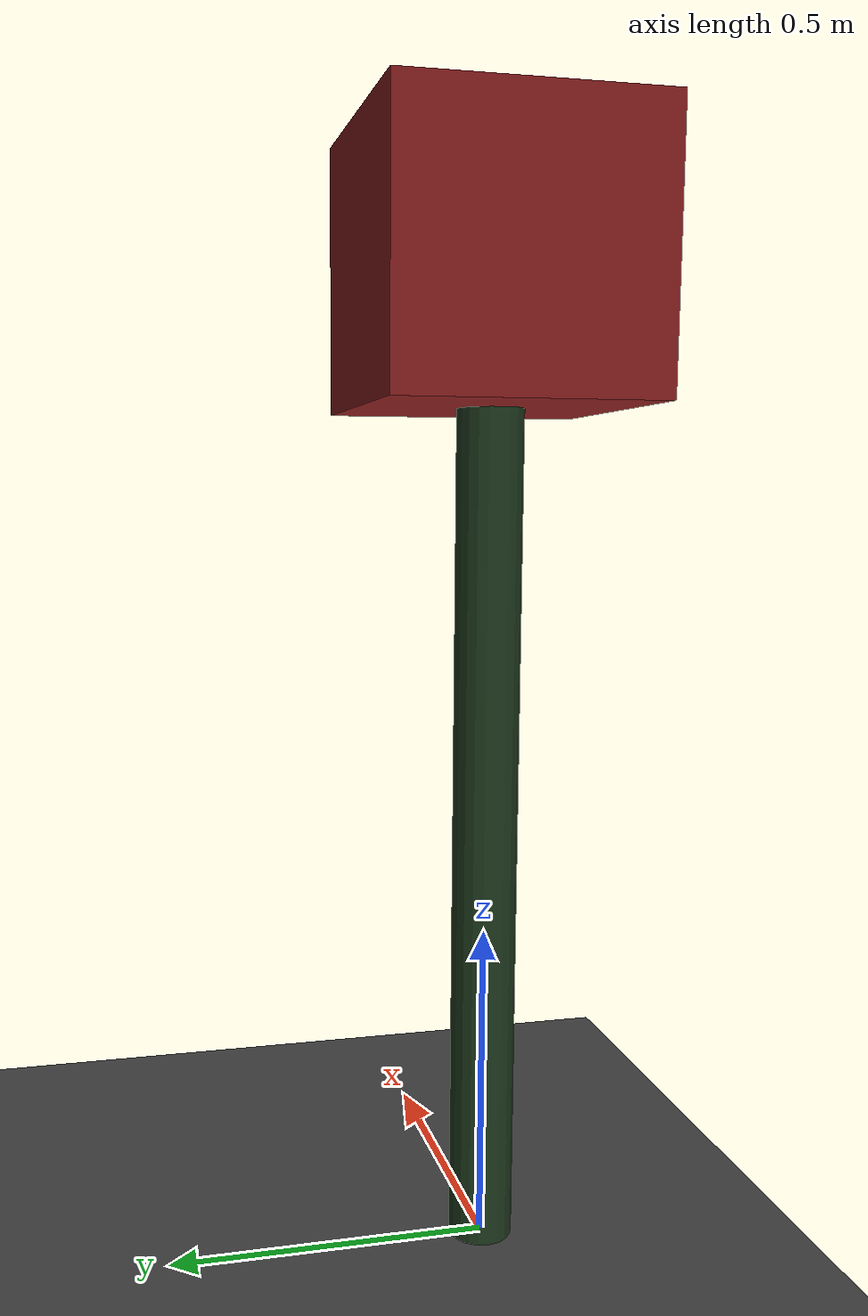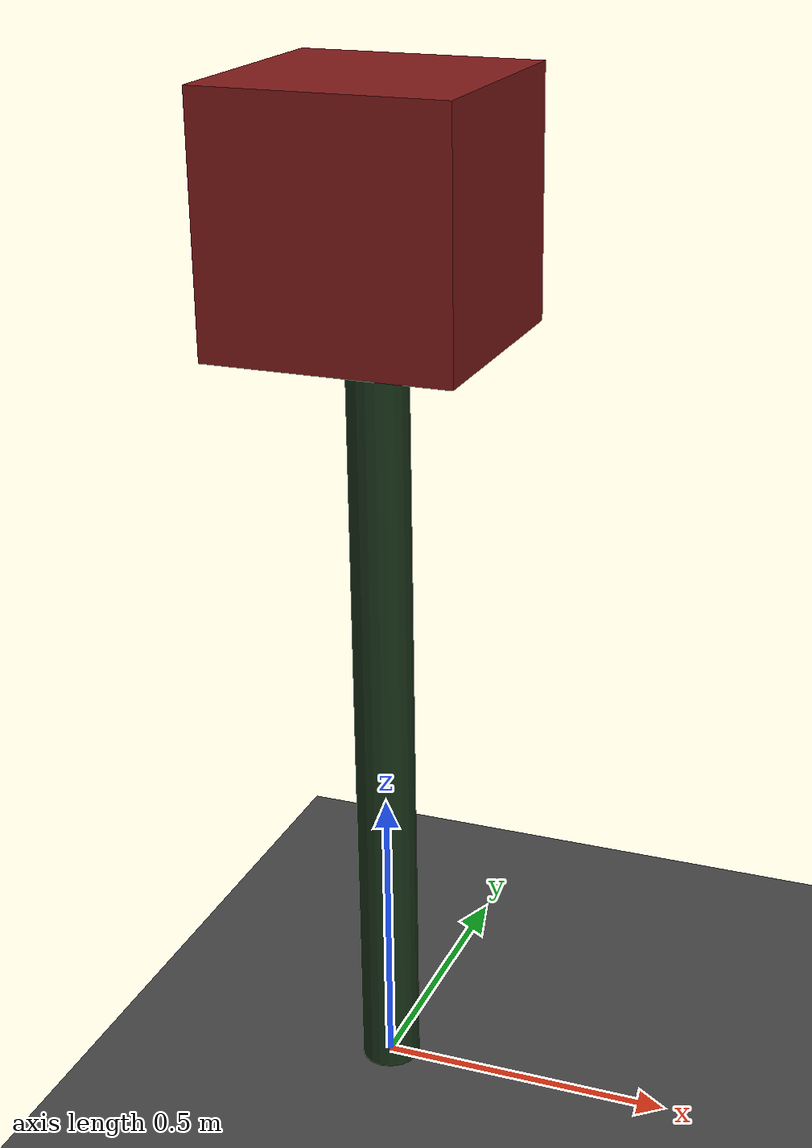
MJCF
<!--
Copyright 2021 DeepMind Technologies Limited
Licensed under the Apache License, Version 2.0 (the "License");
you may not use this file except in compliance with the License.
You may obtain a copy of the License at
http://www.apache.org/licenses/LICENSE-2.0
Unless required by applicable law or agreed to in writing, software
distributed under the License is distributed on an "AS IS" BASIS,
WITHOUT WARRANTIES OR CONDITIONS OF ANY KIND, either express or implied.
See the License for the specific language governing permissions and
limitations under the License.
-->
<mujoco model="flywheel_inverted_pendulum">
  <option collision="all" integrator = "RK4" />
  <visual>
    <rgba haze=".3 .3 .3 1"/>
  </visual>

  <asset>
    <texture type="skybox" builtin="gradient" rgb1="0.6 0.6 0.6" rgb2="0 0 0" width="512" height="512"/>
    <texture name="texplane" type="2d" builtin="checker" rgb1=".25 .25 .25" rgb2=".3 .3 .3" width="512" height="512" mark="cross" markrgb=".8 .8 .8"/>
    <material name="matplane" reflectance="0.3" texture="texplane" texrepeat="1 1" texuniform="true"/>
  </asset>

  <worldbody>
    <geom name="floor" pos="0 0 0" size="0 0 1" type="plane" material="matplane"/>

    <light directional="true" diffuse=".8 .8 .8" specular=".2 .2 .2" pos="5 0 0" dir="-1 0 0"/>
    <light directional="true" diffuse=".8 .8 .8" specular=".2 .2 .2" pos="0 0 5" dir="0 0 -1"/>

    <body name="link1" pos="0 0 0">
      <joint name="joint1" type="hinge" axis="1 0 0" damping="0" stiffness="0"/>
      <geom name="l1geo" type="capsule" size="0.05" fromto="0 0 0  0 0 1.5" rgba=".1 .2 .1 1"/>

      <body name="link2" pos="0 0 1.5">
        <joint name="joint2" type="hinge" axis="1 0 0" damping="0" stiffness="0"/>
        <geom name="l2geo" type="box" size="0.2 0.2 0.2" rgba=".5 .1 .1 1"/>
      </body>
    </body>

  </worldbody>

  <contact>
    <exclude body1="world" body2="link1"/>
    <exclude body1="link1" body2="link2"/>
    <exclude body1="world" body2="link2"/>
  </contact>

  <actuator>
    <motor name="motor2" joint="joint2" forcelimited="false" ctrllimited="false"/>
  </actuator>

</mujoco>
